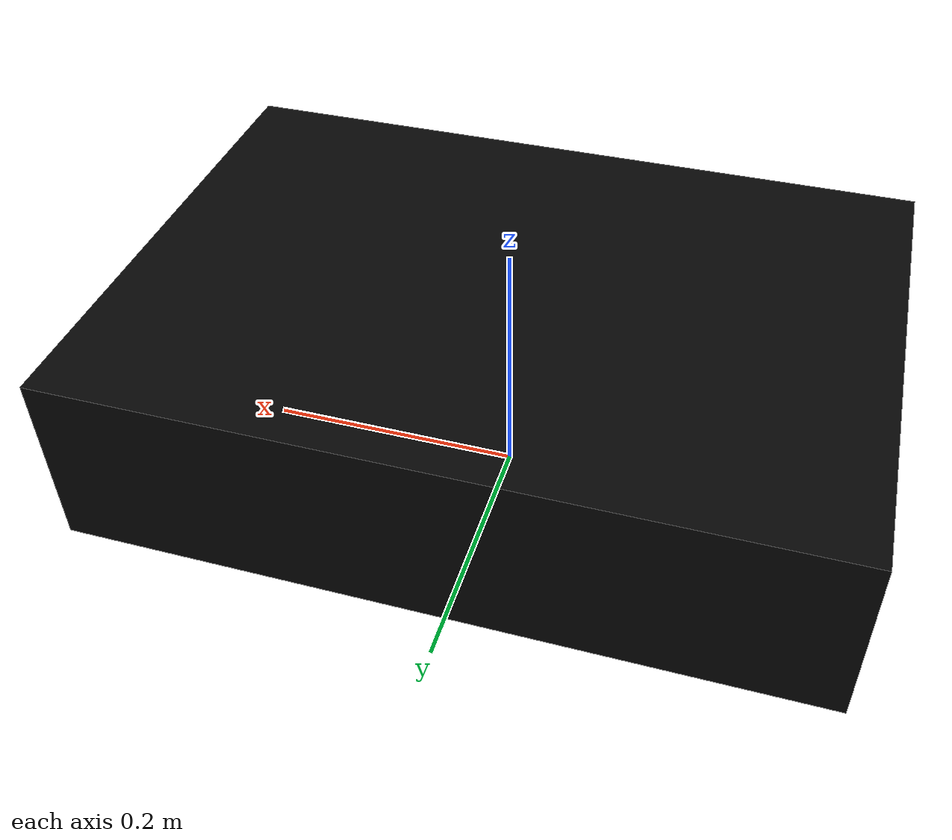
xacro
<?xml version="1.0"?>
<robot xmlns:xacro="http://www.ros.org/wiki/xacro">

  <xacro:include filename="$(find rov_description)/urdf/common/inertial_macros.xacro"/>
  <xacro:include filename="$(find rov_description)/urdf/common/materials.xacro"/>

  <!-- ==================== OFFSETS ==================== -->
  <xacro:property name="s1" value="${b/2+r}"/>
  <!-- ==================== BASE FOOTPRINT ==================== -->
  <link name="base_footprint"/>

  <joint name="base_joint" type="fixed">
    <parent link="base_footprint"/>
    <child  link="base_link"/>
    <origin xyz="0 0 ${s1}" rpy="0 0 0"/>
  </joint>

  <!-- ==================== BASE LINK ==================== -->
  <link name="base_link">
    <visual>
      <origin rpy="0 0 0" xyz="0 0 0"/>
      <geometry>
        <box size="${a} ${c} ${b}"/>
      </geometry>
      <material name="body_material">
        <color rgba="${body_color}"/>
      </material>
    </visual>
    <collision>
      <origin rpy="0 0 0" xyz="0 0 0"/>
      <geometry>
        <box size="${a} ${c} ${b}"/>
      </geometry>
    </collision>
    <xacro:inertia_body/>
  </link>

</robot>

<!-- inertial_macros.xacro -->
<robot xmlns:xacro="http://www.ros.org/wiki/xacro">

  <xacro:property name="pi_const" value="3.14159265"/>

  <xacro:property name="a" value="0.55663" />
  <xacro:property name="b" value="0.14044" />
  <xacro:property name="c" value="0.388"   />

  <xacro:property name="r" value="0.035" />
  <xacro:property name="d" value="0.04"  />

  <xacro:property name="d1" value="271.0"/>
  <xacro:property name="d2" value="2710.0"/>

  <xacro:property name="m1" value="${d1*a*b*c}"/>
  <xacro:property name="m2" value="${d2*pi_const*r*r*d}"/>

  <xacro:property name="Ix_body" value="${(1/12)*m1*(b*b+c*c)}"/>
  <xacro:property name="Iy_body" value="${(1/12)*m1*(a*a+b*b)}"/>
  <xacro:property name="Iz_body" value="${(1/12)*m1*(a*a+c*c)}"/>

  <xacro:property name="Iz_wheel" value="${0.5*m2*r*r}"/>
  <xacro:property name="I_wheel"  value="${(1.0/12.0)*m2*(3.0*r*r+d*d)}"/>

  <xacro:macro name="inertia_body">
    <inertial>
      <origin rpy="0 0 0" xyz="0 0 0"/>
      <mass value="${m1}"/>
      <inertia ixx="${Ix_body}" ixy="0.0" ixz="0.0"
               iyy="${Iy_body}" iyz="0.0"
               izz="${Iz_body}"/>
    </inertial>
  </xacro:macro>

  <xacro:macro name="inertia_wheel">
    <inertial>
      <origin rpy="1.5708 0 0" xyz="0 0 0"/>
      <mass value="${m2}"/>
      <inertia ixx="${I_wheel}"  ixy="0.0" ixz="0.0"
               iyy="${Iz_wheel}" iyz="0.0"
               izz="${I_wheel}"/>
    </inertial>
  </xacro:macro>

  <xacro:macro name="inertia_box" params="mass size_x size_y size_z">
    <inertial>
      <mass value="${mass}"/>
      <origin xyz="0 0 0" rpy="0 0 0"/>
      <inertia
        ixx="${(1/12) * mass * (size_y*size_y + size_z*size_z)}" ixy="0" ixz="0"
        iyy="${(1/12) * mass * (size_x*size_x + size_z*size_z)}" iyz="0"
        izz="${(1/12) * mass * (size_x*size_x + size_y*size_y)}"/>
    </inertial>
  </xacro:macro>

  <xacro:macro name="inertia_cylinder" params="mass radius length">
    <inertial>
      <mass value="${mass}"/>
      <origin xyz="0 0 0" rpy="0 0 0"/>
      <inertia
        ixx="${(1/12) * mass * (3*radius*radius + length*length)}" ixy="0" ixz="0"
        iyy="${(1/12) * mass * (3*radius*radius + length*length)}" iyz="0"
        izz="${0.5 * mass * radius*radius}"/>
    </inertial>
  </xacro:macro>

</robot>

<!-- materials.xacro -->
<robot xmlns:xacro="http://www.ros.org/wiki/xacro">

  <!-- ==================== PREMIUM COLORS ==================== -->
  <xacro:property name="body_color" value="0.02 0.02 0.02 1.0"/>           <!-- Deep Black -->
  <xacro:property name="body_metallic" value="0.05 0.05 0.05 1.0"/>        <!-- Satin Black -->

  <!-- LIDAR - Deep Metallic Burgundy -->
  <xacro:property name="lidar_color" value="0.35 0.05 0.08 1.0"/>          <!-- Deep Burgundy -->
  <xacro:property name="lidar_top_color" value="0.12 0.12 0.12 1.0"/>      <!-- Dark Gunmetal -->

  <!-- CAMERA - Bold Premium Blue -->
  <xacro:property name="camera_color" value="0.05 0.25 0.65 1.0"/>         <!-- Bold Premium Blue -->

  <!-- WHEELS - Premium Dark Alloy -->
  <xacro:property name="wheel_color" value="0.08 0.08 0.08 1.0"/>          <!-- Dark Alloy -->
  <xacro:property name="wheel_rim_color" value="0.85 0.85 0.88 1.0"/>      <!-- Premium Silver -->

  <!-- IMU - Bright Red -->
  <xacro:property name="imu_color" value="0.8 0.1 0.1 1.0"/>               <!-- Bright Red -->

</robot>
